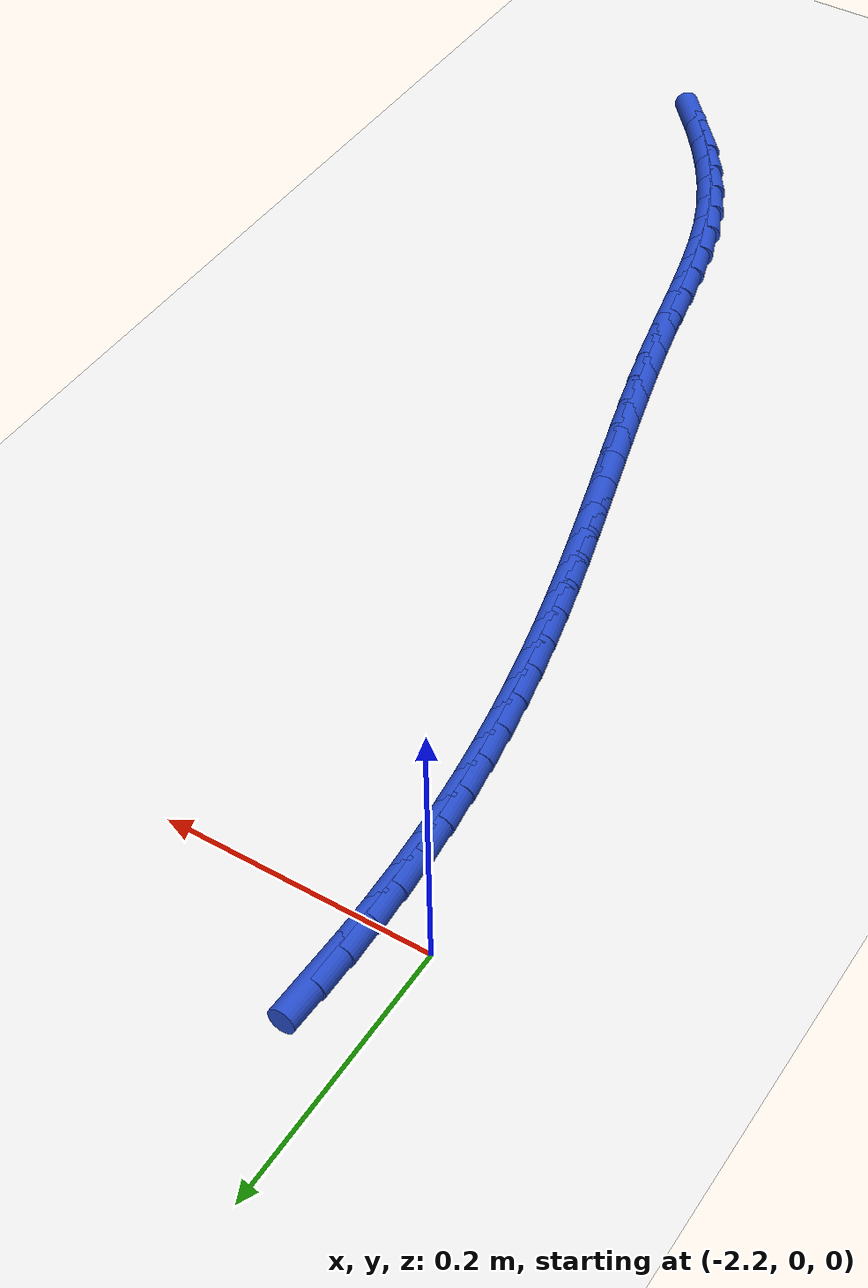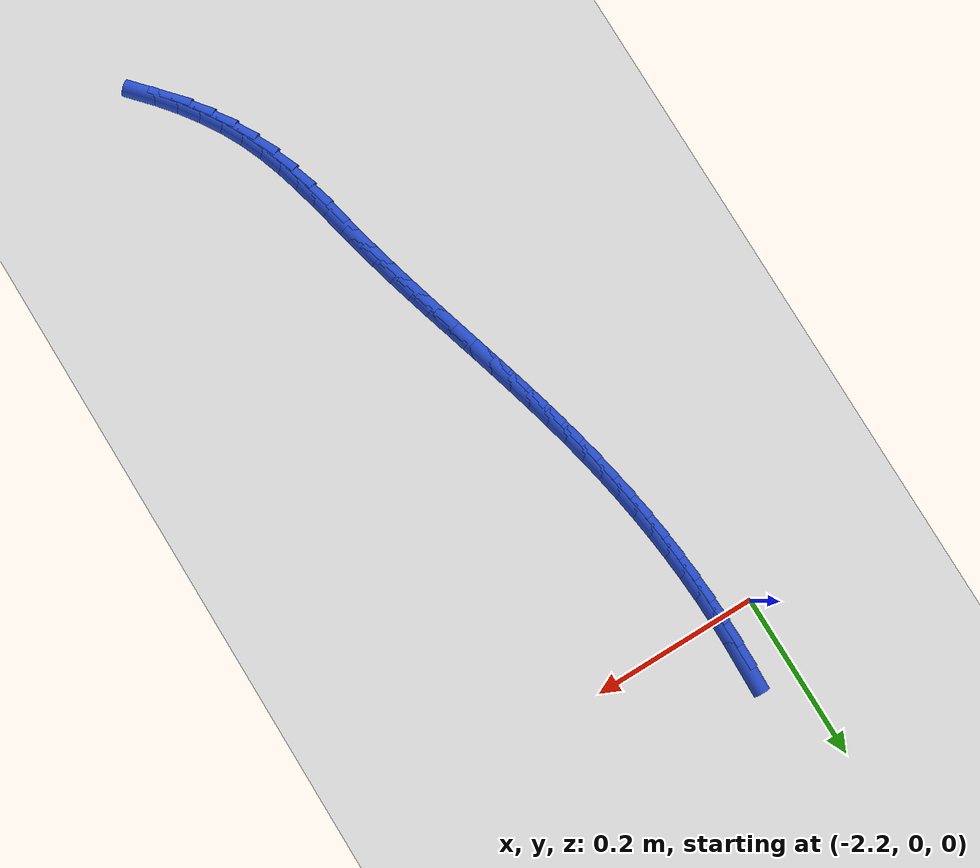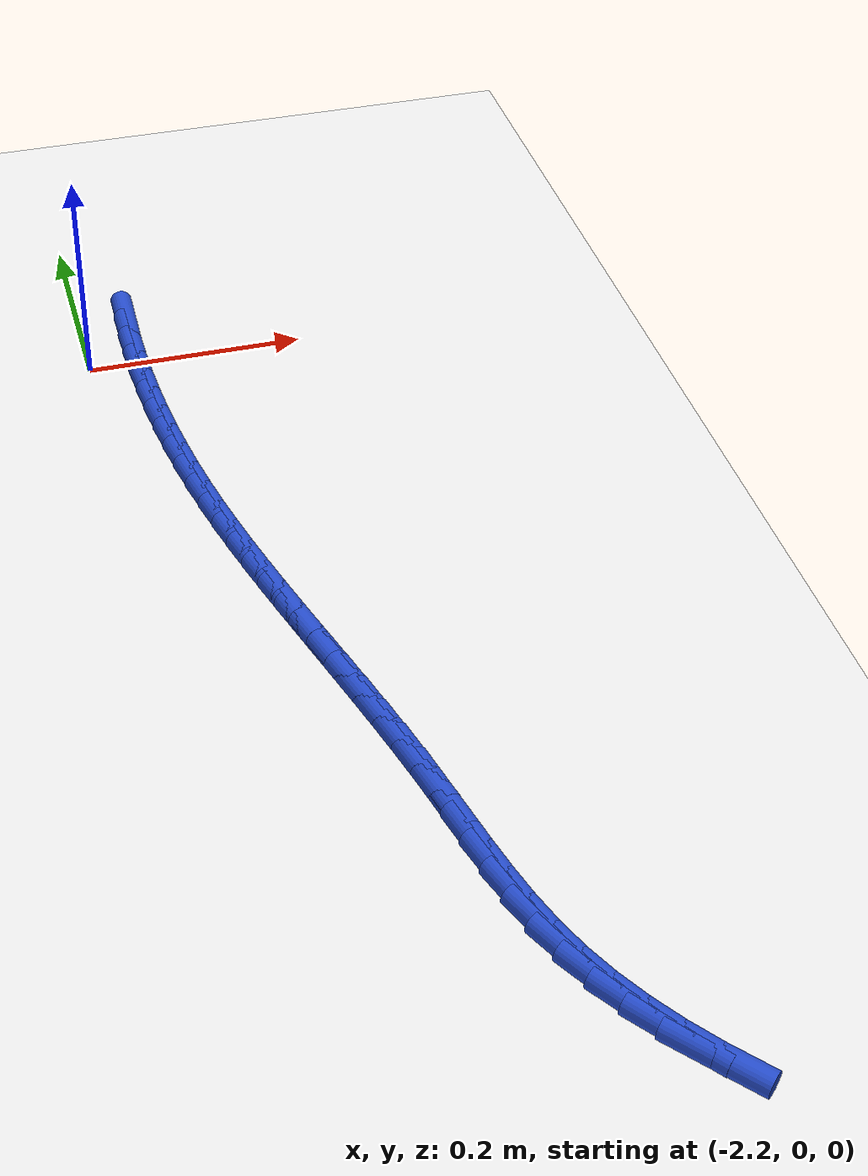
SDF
<sdf version="1.6">
 <world name="default">
  <model name="ground_plane">
   <static>1</static>
   <link name="link">
    <collision name="collision">
     <geometry><plane><normal>0 0 1</normal><size>100 100</size></plane></geometry>
     <surface><friction><ode><mu>100</mu><mu2>50</mu2></ode></friction></surface>
    </collision>
    <visual name="visual">
     <cast_shadows>0</cast_shadows>
     <geometry><plane><normal>0 0 1</normal><size>100 100</size></plane></geometry>
     <material>
      <script><uri>file://media/materials/scripts/gazebo.material</uri><name>Gazebo/WhiteGlow</name></script>
     </material>
    </visual>
   </link>
  </model>
  <model name="line">
   <link name="link_139">
    <pose>-2.156087938430146 0.052992136682250106 0.01 0 1.57 1.5434523392639417</pose>
    <collision name="collision">
     <geometry><cylinder><radius>0.01</radius><length>0.08</length></cylinder></geometry>
    </collision>
    <visual name="visual">
     <material>
      <script><name>Gazebo/Blue</name><uri>file://media/materials/scripts/gazebo.material</uri></script>
     </material>
     <geometry><cylinder><radius>0.01</radius><length>0.08</length></cylinder></geometry>
    </visual>
   </link>
   <link name="link_140">
    <pose>-2.156872892165889 0.024292661518770138 0.01 0 1.57 -1.5695750139177522</pose>
    <collision name="collision">
     <geometry><cylinder><radius>0.01</radius><length>0.08</length></cylinder></geometry>
    </collision>
    <visual name="visual">
     <material>
      <script><name>Gazebo/Blue</name><uri>file://media/materials/scripts/gazebo.material</uri></script>
     </material>
     <geometry><cylinder><radius>0.01</radius><length>0.08</length></cylinder></geometry>
    </visual>
   </link>
   <link name="link_141">
    <pose>-2.1568377046256435 -0.004518565652214639 0.01 0 1.57 -1.5420581783657403</pose>
    <collision name="collision">
     <geometry><cylinder><radius>0.01</radius><length>0.08</length></cylinder></geometry>
    </collision>
    <visual name="visual">
     <material>
      <script><name>Gazebo/Blue</name><uri>file://media/materials/scripts/gazebo.material</uri></script>
     </material>
     <geometry><cylinder><radius>0.01</radius><length>0.08</length></cylinder></geometry>
    </visual>
   </link>
   <link name="link_142">
    <pose>-2.1560076643859065 -0.033393485145753854 0.01 0 1.57 -1.5154850686142125</pose>
    <collision name="collision">
     <geometry><cylinder><radius>0.01</radius><length>0.08</length></cylinder></geometry>
    </collision>
    <visual name="visual">
     <material>
      <script><name>Gazebo/Blue</name><uri>file://media/materials/scripts/gazebo.material</uri></script>
     </material>
     <geometry><cylinder><radius>0.01</radius><length>0.08</length></cylinder></geometry>
    </visual>
   </link>
   <link name="link_143">
    <pose>-2.154408060023179 -0.06228403727690055 0.01 0 1.57 -1.4897534261417409</pose>
    <collision name="collision">
     <geometry><cylinder><radius>0.01</radius><length>0.08</length></cylinder></geometry>
    </collision>
    <visual name="visual">
     <material>
      <script><name>Gazebo/Blue</name><uri>file://media/materials/scripts/gazebo.material</uri></script>
     </material>
     <geometry><cylinder><radius>0.01</radius><length>0.08</length></cylinder></geometry>
    </visual>
   </link>
   <link name="link_144">
    <pose>-2.1520641801139604 -0.0911421623607044 0.01 0 1.57 -1.4647633151397914</pose>
    <collision name="collision">
     <geometry><cylinder><radius>0.01</radius><length>0.08</length></cylinder></geometry>
    </collision>
    <visual name="visual">
     <material>
      <script><name>Gazebo/Blue</name><uri>file://media/materials/scripts/gazebo.material</uri></script>
     </material>
     <geometry><cylinder><radius>0.01</radius><length>0.08</length></cylinder></geometry>
    </visual>
   </link>
   <link name="link_145">
    <pose>-2.1490013132347503 -0.11991980071221847 0.01 0 1.57 -1.440416788437192</pose>
    <collision name="collision">
     <geometry><cylinder><radius>0.01</radius><length>0.08</length></cylinder></geometry>
    </collision>
    <visual name="visual">
     <material>
      <script><name>Gazebo/Blue</name><uri>file://media/materials/scripts/gazebo.material</uri></script>
     </material>
     <geometry><cylinder><radius>0.01</radius><length>0.08</length></cylinder></geometry>
    </visual>
   </link>
   <link name="link_146">
    <pose>-2.145244747962048 -0.14856889264649237 0.01 0 1.57 -1.416617405049662</pose>
    <collision name="collision">
     <geometry><cylinder><radius>0.01</radius><length>0.08</length></cylinder></geometry>
    </collision>
    <visual name="visual">
     <material>
      <script><name>Gazebo/Blue</name><uri>file://media/materials/scripts/gazebo.material</uri></script>
     </material>
     <geometry><cylinder><radius>0.01</radius><length>0.08</length></cylinder></geometry>
    </visual>
   </link>
   <link name="link_147">
    <pose>-2.140819772872353 -0.1770413784785791 0.01 0 1.57 -1.393269617381311</pose>
    <collision name="collision">
     <geometry><cylinder><radius>0.01</radius><length>0.08</length></cylinder></geometry>
    </collision>
    <visual name="visual">
     <material>
      <script><name>Gazebo/Blue</name><uri>file://media/materials/scripts/gazebo.material</uri></script>
     </material>
     <geometry><cylinder><radius>0.01</radius><length>0.08</length></cylinder></geometry>
    </visual>
   </link>
   <link name="link_148">
    <pose>-2.1357516765421654 -0.2052891985235284 0.01 0 1.57 -1.3704194231515263</pose>
    <collision name="collision">
     <geometry><cylinder><radius>0.01</radius><length>0.08</length></cylinder></geometry>
    </collision>
    <visual name="visual">
     <material>
      <script><name>Gazebo/Blue</name><uri>file://media/materials/scripts/gazebo.material</uri></script>
     </material>
     <geometry><cylinder><radius>0.01</radius><length>0.08</length></cylinder></geometry>
    </visual>
   </link>
   <link name="link_149">
    <pose>-2.130068874039071 -0.2332691776790848 0.01 0 1.57 -1.3494752629937345</pose>
    <collision name="collision">
     <geometry><cylinder><radius>0.01</radius><length>0.08</length></cylinder></geometry>
    </collision>
    <visual name="visual">
     <material>
      <script><name>Gazebo/Blue</name><uri>file://media/materials/scripts/gazebo.material</uri></script>
     </material>
     <geometry><cylinder><radius>0.01</radius><length>0.08</length></cylinder></geometry>
    </visual>
   </link>
   <link name="link_150">
    <pose>-2.1238318805788046 -0.26098829157866227 0.01 0 1.57 -1.331365939510187</pose>
    <collision name="collision">
     <geometry><cylinder><radius>0.01</radius><length>0.08</length></cylinder></geometry>
    </collision>
    <visual name="visual">
     <material>
      <script><name>Gazebo/Blue</name><uri>file://media/materials/scripts/gazebo.material</uri></script>
     </material>
     <geometry><cylinder><radius>0.01</radius><length>0.08</length></cylinder></geometry>
    </visual>
   </link>
   <link name="link_151">
    <pose>-2.1171200687127274 -0.2884829770671931 0.01 0 1.57 -1.3161820349541797</pose>
    <collision name="collision">
     <geometry><cylinder><radius>0.01</radius><length>0.08</length></cylinder></geometry>
    </collision>
    <visual name="visual">
     <material>
      <script><name>Gazebo/Blue</name><uri>file://media/materials/scripts/gazebo.material</uri></script>
     </material>
     <geometry><cylinder><radius>0.01</radius><length>0.08</length></cylinder></geometry>
    </visual>
   </link>
   <link name="link_152">
    <pose>-2.110013051636664 -0.31579004695351204 0.01 0 1.57 -1.303983822465508</pose>
    <collision name="collision">
     <geometry><cylinder><radius>0.01</radius><length>0.08</length></cylinder></geometry>
    </collision>
    <visual name="visual">
     <material>
      <script><name>Gazebo/Blue</name><uri>file://media/materials/scripts/gazebo.material</uri></script>
     </material>
     <geometry><cylinder><radius>0.01</radius><length>0.08</length></cylinder></geometry>
    </visual>
   </link>
   <link name="link_153">
    <pose>-2.102590442546439 -0.342946314046451 0.01 0 1.57 -1.2948153754897043</pose>
    <collision name="collision">
     <geometry><cylinder><radius>0.01</radius><length>0.08</length></cylinder></geometry>
    </collision>
    <visual name="visual">
     <material>
      <script><name>Gazebo/Blue</name><uri>file://media/materials/scripts/gazebo.material</uri></script>
     </material>
     <geometry><cylinder><radius>0.01</radius><length>0.08</length></cylinder></geometry>
    </visual>
   </link>
   <link name="link_154">
    <pose>-2.094931854637876 -0.3699885911548456 0.01 0 1.57 -1.288707403182035</pose>
    <collision name="collision">
     <geometry><cylinder><radius>0.01</radius><length>0.08</length></cylinder></geometry>
    </collision>
    <visual name="visual">
     <material>
      <script><name>Gazebo/Blue</name><uri>file://media/materials/scripts/gazebo.material</uri></script>
     </material>
     <geometry><cylinder><radius>0.01</radius><length>0.08</length></cylinder></geometry>
    </visual>
   </link>
   <link name="link_155">
    <pose>-2.0871169011068003 -0.39695369108752804 0.01 0 1.57 -1.2856795109961814</pose>
    <collision name="collision">
     <geometry><cylinder><radius>0.01</radius><length>0.08</length></cylinder></geometry>
    </collision>
    <visual name="visual">
     <material>
      <script><name>Gazebo/Blue</name><uri>file://media/materials/scripts/gazebo.material</uri></script>
     </material>
     <geometry><cylinder><radius>0.01</radius><length>0.08</length></cylinder></geometry>
    </visual>
   </link>
   <link name="link_156">
    <pose>-2.0792251951490366 -0.42387842665333364 0.01 0 1.57 -1.285741761616555</pose>
    <collision name="collision">
     <geometry><cylinder><radius>0.01</radius><length>0.08</length></cylinder></geometry>
    </collision>
    <visual name="visual">
     <material>
      <script><name>Gazebo/Blue</name><uri>file://media/materials/scripts/gazebo.material</uri></script>
     </material>
     <geometry><cylinder><radius>0.01</radius><length>0.08</length></cylinder></geometry>
    </visual>
   </link>
   <link name="link_157">
    <pose>-2.07133634996041 -0.4507996106610947 0.01 0 1.57 -1.2888954588702883</pose>
    <collision name="collision">
     <geometry><cylinder><radius>0.01</radius><length>0.08</length></cylinder></geometry>
    </collision>
    <visual name="visual">
     <material>
      <script><name>Gazebo/Blue</name><uri>file://media/materials/scripts/gazebo.material</uri></script>
     </material>
     <geometry><cylinder><radius>0.01</radius><length>0.08</length></cylinder></geometry>
    </visual>
   </link>
   <link name="link_158">
    <pose>-2.063529978736745 -0.47775405591964665 0.01 0 1.57 -1.2951331170273628</pose>
    <collision name="collision">
     <geometry><cylinder><radius>0.01</radius><length>0.08</length></cylinder></geometry>
    </collision>
    <visual name="visual">
     <material>
      <script><name>Gazebo/Blue</name><uri>file://media/materials/scripts/gazebo.material</uri></script>
     </material>
     <geometry><cylinder><radius>0.01</radius><length>0.08</length></cylinder></geometry>
    </visual>
   </link>
   <link name="link_159">
    <pose>-2.0558856946738664 -0.5047785752378218 0.01 0 1.57 -1.3044376134757316</pose>
    <collision name="collision">
     <geometry><cylinder><radius>0.01</radius><length>0.08</length></cylinder></geometry>
    </collision>
    <visual name="visual">
     <material>
      <script><name>Gazebo/Blue</name><uri>file://media/materials/scripts/gazebo.material</uri></script>
     </material>
     <geometry><cylinder><radius>0.01</radius><length>0.08</length></cylinder></geometry>
    </visual>
   </link>
   <link name="link_160">
    <pose>-2.0484831109675987 -0.5319099814244546 0.01 0 1.57 -1.3167805586382153</pose>
    <collision name="collision">
     <geometry><cylinder><radius>0.01</radius><length>0.08</length></cylinder></geometry>
    </collision>
    <visual name="visual">
     <material>
      <script><name>Gazebo/Blue</name><uri>file://media/materials/scripts/gazebo.material</uri></script>
     </material>
     <geometry><cylinder><radius>0.01</radius><length>0.08</length></cylinder></geometry>
    </visual>
   </link>
   <link name="link_161">
    <pose>-2.0414018408137666 -0.5591850872883797 0.01 0 1.57 -1.3321177275641716</pose>
    <collision name="collision">
     <geometry><cylinder><radius>0.01</radius><length>0.08</length></cylinder></geometry>
    </collision>
    <visual name="visual">
     <material>
      <script><name>Gazebo/Blue</name><uri>file://media/materials/scripts/gazebo.material</uri></script>
     </material>
     <geometry><cylinder><radius>0.01</radius><length>0.08</length></cylinder></geometry>
    </visual>
   </link>
   <link name="link_162">
    <pose>-2.0347214385746075 -0.5866406808928732 0.01 0 1.57 -1.3461460315472784</pose>
    <collision name="collision">
     <geometry><cylinder><radius>0.01</radius><length>0.08</length></cylinder></geometry>
    </collision>
    <visual name="visual">
     <material>
      <script><name>Gazebo/Blue</name><uri>file://media/materials/scripts/gazebo.material</uri></script>
     </material>
     <geometry><cylinder><radius>0.01</radius><length>0.08</length></cylinder></geometry>
    </visual>
   </link>
   <link name="link_163">
    <pose>-2.0284088104984743 -0.614266170218867 0.01 0 1.57 -1.3458197642082574</pose>
    <collision name="collision">
     <geometry><cylinder><radius>0.01</radius><length>0.08</length></cylinder></geometry>
    </collision>
    <visual name="visual">
     <material>
      <script><name>Gazebo/Blue</name><uri>file://media/materials/scripts/gazebo.material</uri></script>
     </material>
     <geometry><cylinder><radius>0.01</radius><length>0.08</length></cylinder></geometry>
    </visual>
   </link>
   <link name="link_164">
    <pose>-2.022083660998142 -0.6419049292748251 0.01 0 1.57 -1.3286360212496944</pose>
    <collision name="collision">
     <geometry><cylinder><radius>0.01</radius><length>0.08</length></cylinder></geometry>
    </collision>
    <visual name="visual">
     <material>
      <script><name>Gazebo/Blue</name><uri>file://media/materials/scripts/gazebo.material</uri></script>
     </material>
     <geometry><cylinder><radius>0.01</radius><length>0.08</length></cylinder></geometry>
    </visual>
   </link>
   <link name="link_165">
    <pose>-2.015299015119096 -0.6693722865582519 0.01 0 1.57 -1.2943720079501122</pose>
    <collision name="collision">
     <geometry><cylinder><radius>0.01</radius><length>0.08</length></cylinder></geometry>
    </collision>
    <visual name="visual">
     <material>
      <script><name>Gazebo/Blue</name><uri>file://media/materials/scripts/gazebo.material</uri></script>
     </material>
     <geometry><cylinder><radius>0.01</radius><length>0.08</length></cylinder></geometry>
    </visual>
   </link>
   <link name="link_166">
    <pose>-2.007607897906826 -0.6964835705666491 0.01 0 1.57 -1.2427009330345766</pose>
    <collision name="collision">
     <geometry><cylinder><radius>0.01</radius><length>0.08</length></cylinder></geometry>
    </collision>
    <visual name="visual">
     <material>
      <script><name>Gazebo/Blue</name><uri>file://media/materials/scripts/gazebo.material</uri></script>
     </material>
     <geometry><cylinder><radius>0.01</radius><length>0.08</length></cylinder></geometry>
    </visual>
   </link>
   <link name="link_167">
    <pose>-1.99856333440682 -0.7230541097975213 0.01 0 1.57 -1.173527636650959</pose>
    <collision name="collision">
     <geometry><cylinder><radius>0.01</radius><length>0.08</length></cylinder></geometry>
    </collision>
    <visual name="visual">
     <material>
      <script><name>Gazebo/Blue</name><uri>file://media/materials/scripts/gazebo.material</uri></script>
     </material>
     <geometry><cylinder><radius>0.01</radius><length>0.08</length></cylinder></geometry>
    </visual>
   </link>
   <link name="link_168">
    <pose>-1.987719218494873 -0.7488994398536137 0.01 0 1.57 -1.0941816920254137</pose>
    <collision name="collision">
     <geometry><cylinder><radius>0.01</radius><length>0.08</length></cylinder></geometry>
    </collision>
    <visual name="visual">
     <material>
      <script><name>Gazebo/Blue</name><uri>file://media/materials/scripts/gazebo.material</uri></script>
     </material>
     <geometry><cylinder><radius>0.01</radius><length>0.08</length></cylinder></geometry>
    </visual>
   </link>
   <link name="link_169">
    <pose>-1.974820979755771 -0.7738807531816314 0.01 0 1.57 -1.0204463141438398</pose>
    <collision name="collision">
     <geometry><cylinder><radius>0.01</radius><length>0.08</length></cylinder></geometry>
    </collision>
    <visual name="visual">
     <material>
      <script><name>Gazebo/Blue</name><uri>file://media/materials/scripts/gazebo.material</uri></script>
     </material>
     <geometry><cylinder><radius>0.01</radius><length>0.08</length></cylinder></geometry>
    </visual>
   </link>
   <link name="link_170">
    <pose>-1.960045053213959 -0.7979619820683118 0.01 0 1.57 -0.9540993577909821</pose>
    <collision name="collision">
     <geometry><cylinder><radius>0.01</radius><length>0.08</length></cylinder></geometry>
    </collision>
    <visual name="visual">
     <material>
      <script><name>Gazebo/Blue</name><uri>file://media/materials/scripts/gazebo.material</uri></script>
     </material>
     <geometry><cylinder><radius>0.01</radius><length>0.08</length></cylinder></geometry>
    </visual>
   </link>
   <link name="link_171">
    <pose>-1.9436267638621683 -0.8211210965487961 0.01 0 1.57 -0.8945927196134766</pose>
    <collision name="collision">
     <geometry><cylinder><radius>0.01</radius><length>0.08</length></cylinder></geometry>
    </collision>
    <visual name="visual">
     <material>
      <script><name>Gazebo/Blue</name><uri>file://media/materials/scripts/gazebo.material</uri></script>
     </material>
     <geometry><cylinder><radius>0.01</radius><length>0.08</length></cylinder></geometry>
    </visual>
   </link>
   <link name="link_172">
    <pose>-1.9258014366931302 -0.8433360666582242 0.01 0 1.57 -0.8412899222293672</pose>
    <collision name="collision">
     <geometry><cylinder><radius>0.01</radius><length>0.08</length></cylinder></geometry>
    </collision>
    <visual name="visual">
     <material>
      <script><name>Gazebo/Blue</name><uri>file://media/materials/scripts/gazebo.material</uri></script>
     </material>
     <geometry><cylinder><radius>0.01</radius><length>0.08</length></cylinder></geometry>
    </visual>
   </link>
  </model>
 </world>
</sdf>
